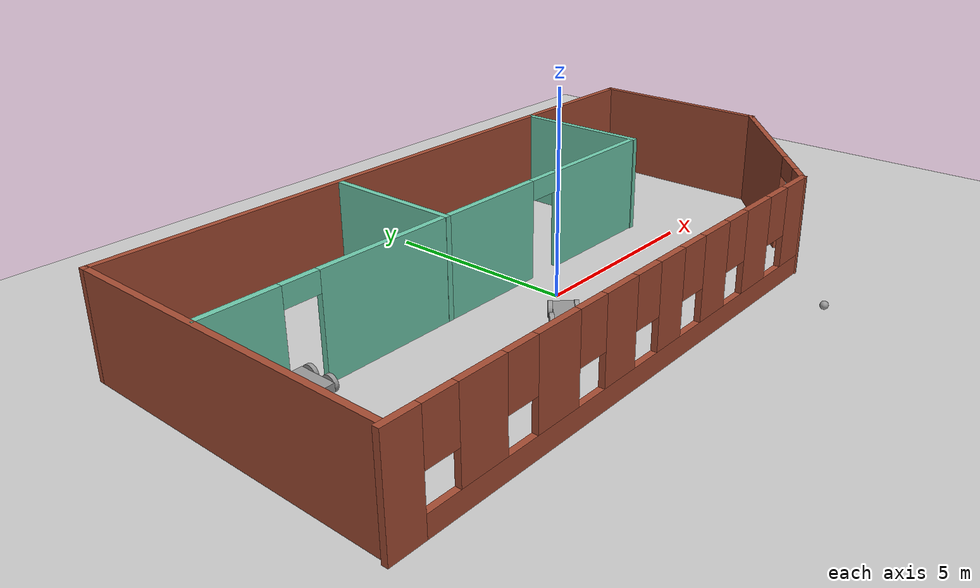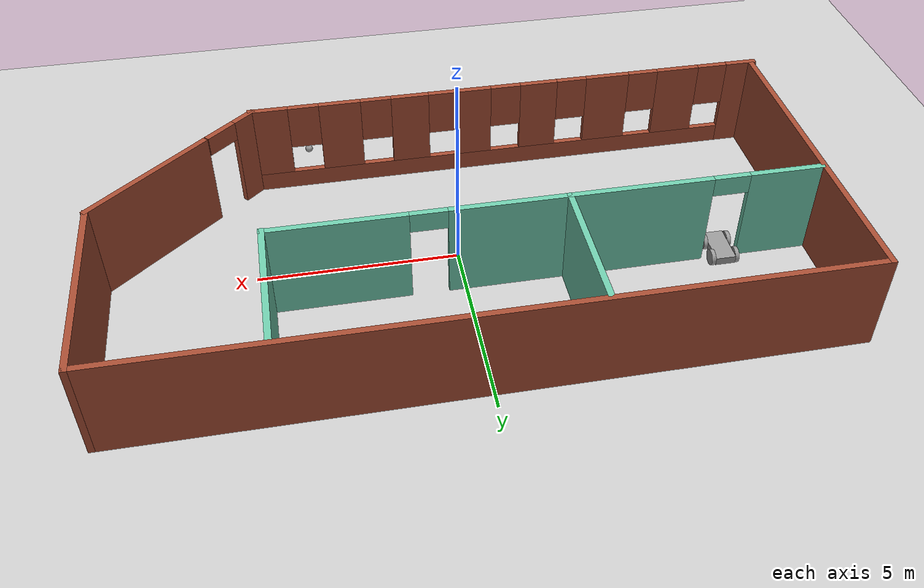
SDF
<sdf version="1.6">
 <world name="default">
  <plugin name="projectPlugin" filename="libprojectPlugin.so"/>
  <light name="sun" type="directional">
   <pose>0 0 10 0 -0 0</pose>
   <diffuse>0.8 0.8 0.8 1</diffuse>
   <specular>0.2 0.2 0.2 1</specular>
   <attenuation>
    <range>1000</range>
    <constant>0.9</constant>
    <linear>0.01</linear>
    <quadratic>0.001</quadratic>
   </attenuation>
   <direction>-0.5 0.1 -0.9</direction>
  </light>
  <model name="ground_plane">
   <static>1</static>
   <link name="link">
    <collision name="collision">
     <geometry><plane><normal>0 0 1</normal><size>100 100</size></plane></geometry>
     <surface><friction><ode><mu>100</mu><mu2>50</mu2></ode></friction></surface>
    </collision>
    <visual name="visual">
     <cast_shadows>0</cast_shadows>
     <geometry><plane><normal>0 0 1</normal><size>100 100</size></plane></geometry>
     <material>
      <script><uri>file://media/materials/scripts/gazebo.material</uri><name>Gazebo/Grey</name></script>
     </material>
    </visual>
   </link>
  </model>
  <gravity>0 0 -9.8</gravity>
  <magnetic_field>6e-06 2.3e-05 -4.2e-05</magnetic_field>
  <atmosphere type="adiabatic"/>
  <physics name="default_physics" default="0" type="ode">
   <max_step_size>0.001</max_step_size>
   <real_time_factor>1</real_time_factor>
   <real_time_update_rate>1000</real_time_update_rate>
  </physics>
  <scene><ambient>0.4 0.4 0.4 1</ambient><background>0.7 0.7 0.7 1</background><shadows>1</shadows></scene>
  <spherical_coordinates>
   <surface_model>EARTH_WGS84</surface_model>
   <latitude_deg>0</latitude_deg>
   <longitude_deg>0</longitude_deg>
   <elevation>0</elevation>
   <heading_deg>0</heading_deg>
  </spherical_coordinates>
  <model name="BasicBuilding">
   <pose>-0.10612 0.4507 0 0 -0 0</pose>
   <link name="Wall_0">
    <pose>-1.92677 -4.10118 0 0 -0 0</pose>
    <visual name="Wall_0_Visual_0">
     <pose>-6.4517 0 1.25 0 -0 0</pose>
     <geometry><box><size>0.846605 0.15 2.5</size></box></geometry>
     <material>
      <script><uri>file://media/materials/scripts/gazebo.material</uri><name>Gazebo/Bricks</name></script>
      <ambient>0.760784 0.662745 0.627451 1</ambient>
     </material>
     <meta><layer>0</layer></meta>
    </visual>
    <collision name="Wall_0_Collision_0">
     <geometry><box><size>0.846605 0.15 2.5</size></box></geometry>
     <pose>-6.4517 0 1.25 0 -0 0</pose>
    </collision>
    <visual name="Wall_0_Visual_1">
     <pose>0.423302 0 0.25 0 -0 0</pose>
     <geometry><box><size>12.9034 0.15 0.5</size></box></geometry>
     <material>
      <script><uri>file://media/materials/scripts/gazebo.material</uri><name>Gazebo/Bricks</name></script>
      <ambient>0.760784 0.662745 0.627451 1</ambient>
     </material>
     <meta><layer>0</layer></meta>
    </visual>
    <collision name="Wall_0_Collision_1">
     <geometry><box><size>12.9034 0.15 0.5</size></box></geometry>
     <pose>0.423302 0 0.25 0 -0 0</pose>
    </collision>
    <visual name="Wall_0_Visual_2">
     <pose>-4.6505 0 1.5 0 -0 0</pose>
     <geometry><box><size>1.15579 0.15 2</size></box></geometry>
     <material>
      <script><uri>file://media/materials/scripts/gazebo.material</uri><name>Gazebo/Bricks</name></script>
      <ambient>0.760784 0.662745 0.627451 1</ambient>
     </material>
     <meta><layer>0</layer></meta>
    </visual>
    <collision name="Wall_0_Collision_2">
     <geometry><box><size>1.15579 0.15 2</size></box></geometry>
     <pose>-4.6505 0 1.5 0 -0 0</pose>
    </collision>
    <visual name="Wall_0_Visual_3">
     <pose>-2.68292 0 1.5 0 -0 0</pose>
     <geometry><box><size>1.17936 0.15 2</size></box></geometry>
     <material>
      <script><uri>file://media/materials/scripts/gazebo.material</uri><name>Gazebo/Bricks</name></script>
      <ambient>0.760784 0.662745 0.627451 1</ambient>
     </material>
     <meta><layer>0</layer></meta>
    </visual>
    <collision name="Wall_0_Collision_3">
     <geometry><box><size>1.17936 0.15 2</size></box></geometry>
     <pose>-2.68292 0 1.5 0 -0 0</pose>
    </collision>
    <visual name="Wall_0_Visual_4">
     <pose>-0.79322 0 1.5 0 -0 0</pose>
     <geometry><box><size>1.00005 0.15 2</size></box></geometry>
     <material>
      <script><uri>file://media/materials/scripts/gazebo.material</uri><name>Gazebo/Bricks</name></script>
      <ambient>0.760784 0.662745 0.627451 1</ambient>
     </material>
     <meta><layer>0</layer></meta>
    </visual>
    <collision name="Wall_0_Collision_4">
     <geometry><box><size>1.00005 0.15 2</size></box></geometry>
     <pose>-0.79322 0 1.5 0 -0 0</pose>
    </collision>
    <visual name="Wall_0_Visual_5">
     <pose>0.943319 0 1.5 0 -0 0</pose>
     <geometry><box><size>0.873027 0.15 2</size></box></geometry>
     <material>
      <script><uri>file://media/materials/scripts/gazebo.material</uri><name>Gazebo/Bricks</name></script>
      <ambient>0.760784 0.662745 0.627451 1</ambient>
     </material>
     <meta><layer>0</layer></meta>
    </visual>
    <collision name="Wall_0_Collision_5">
     <geometry><box><size>0.873027 0.15 2</size></box></geometry>
     <pose>0.943319 0 1.5 0 -0 0</pose>
    </collision>
    <visual name="Wall_0_Visual_6">
     <pose>2.67526 0 1.5 0 -0 0</pose>
     <geometry><box><size>0.990846 0.15 2</size></box></geometry>
     <material>
      <script><uri>file://media/materials/scripts/gazebo.material</uri><name>Gazebo/Bricks</name></script>
      <ambient>0.760784 0.662745 0.627451 1</ambient>
     </material>
     <meta><layer>0</layer></meta>
    </visual>
    <collision name="Wall_0_Collision_6">
     <geometry><box><size>0.990846 0.15 2</size></box></geometry>
     <pose>2.67526 0 1.5 0 -0 0</pose>
    </collision>
    <visual name="Wall_0_Visual_7">
     <pose>4.51323 0 1.5 0 -0 0</pose>
     <geometry><box><size>1.0851 0.15 2</size></box></geometry>
     <material>
      <script><uri>file://media/materials/scripts/gazebo.material</uri><name>Gazebo/Bricks</name></script>
      <ambient>0.760784 0.662745 0.627451 1</ambient>
     </material>
     <meta><layer>0</layer></meta>
    </visual>
    <collision name="Wall_0_Collision_7">
     <geometry><box><size>1.0851 0.15 2</size></box></geometry>
     <pose>4.51323 0 1.5 0 -0 0</pose>
    </collision>
    <visual name="Wall_0_Visual_8">
     <pose>6.36539 0 1.5 0 -0 0</pose>
     <geometry><box><size>1.01922 0.15 2</size></box></geometry>
     <material>
      <script><uri>file://media/materials/scripts/gazebo.material</uri><name>Gazebo/Bricks</name></script>
      <ambient>0.760784 0.662745 0.627451 1</ambient>
     </material>
     <meta><layer>0</layer></meta>
    </visual>
    <collision name="Wall_0_Collision_8">
     <geometry><box><size>1.01922 0.15 2</size></box></geometry>
     <pose>6.36539 0 1.5 0 -0 0</pose>
    </collision>
    <visual name="Wall_0_Visual_9">
     <pose>-5.6284 0 1.9 0 -0 0</pose>
     <geometry><box><size>0.8 0.15 1.2</size></box></geometry>
     <material>
      <script><uri>file://media/materials/scripts/gazebo.material</uri><name>Gazebo/Bricks</name></script>
      <ambient>0.760784 0.662745 0.627451 1</ambient>
     </material>
     <meta><layer>0</layer></meta>
    </visual>
    <collision name="Wall_0_Collision_9">
     <geometry><box><size>0.8 0.15 1.2</size></box></geometry>
     <pose>-5.6284 0 1.9 0 -0 0</pose>
    </collision>
    <visual name="Wall_0_Visual_10">
     <pose>-3.6726 0 1.9 0 -0 0</pose>
     <geometry><box><size>0.8 0.15 1.2</size></box></geometry>
     <material>
      <script><uri>file://media/materials/scripts/gazebo.material</uri><name>Gazebo/Bricks</name></script>
      <ambient>0.760784 0.662745 0.627451 1</ambient>
     </material>
     <meta><layer>0</layer></meta>
    </visual>
    <collision name="Wall_0_Collision_10">
     <geometry><box><size>0.8 0.15 1.2</size></box></geometry>
     <pose>-3.6726 0 1.9 0 -0 0</pose>
    </collision>
    <visual name="Wall_0_Visual_11">
     <pose>-1.69325 0 1.9 0 -0 0</pose>
     <geometry><box><size>0.8 0.15 1.2</size></box></geometry>
     <material>
      <script><uri>file://media/materials/scripts/gazebo.material</uri><name>Gazebo/Bricks</name></script>
      <ambient>0.760784 0.662745 0.627451 1</ambient>
     </material>
     <meta><layer>0</layer></meta>
    </visual>
    <collision name="Wall_0_Collision_11">
     <geometry><box><size>0.8 0.15 1.2</size></box></geometry>
     <pose>-1.69325 0 1.9 0 -0 0</pose>
    </collision>
    <visual name="Wall_0_Visual_12">
     <pose>0.106805 0 1.9 0 -0 0</pose>
     <geometry><box><size>0.8 0.15 1.2</size></box></geometry>
     <material>
      <script><uri>file://media/materials/scripts/gazebo.material</uri><name>Gazebo/Bricks</name></script>
      <ambient>0.760784 0.662745 0.627451 1</ambient>
     </material>
     <meta><layer>0</layer></meta>
    </visual>
    <collision name="Wall_0_Collision_12">
     <geometry><box><size>0.8 0.15 1.2</size></box></geometry>
     <pose>0.106805 0 1.9 0 -0 0</pose>
    </collision>
    <visual name="Wall_0_Visual_13">
     <pose>1.77983 0 1.9 0 -0 0</pose>
     <geometry><box><size>0.8 0.15 1.2</size></box></geometry>
     <material>
      <script><uri>file://media/materials/scripts/gazebo.material</uri><name>Gazebo/Bricks</name></script>
      <ambient>0.760784 0.662745 0.627451 1</ambient>
     </material>
     <meta><layer>0</layer></meta>
    </visual>
    <collision name="Wall_0_Collision_13">
     <geometry><box><size>0.8 0.15 1.2</size></box></geometry>
     <pose>1.77983 0 1.9 0 -0 0</pose>
    </collision>
    <visual name="Wall_0_Visual_14">
     <pose>3.57068 0 1.9 0 -0 0</pose>
     <geometry><box><size>0.8 0.15 1.2</size></box></geometry>
     <material>
      <script><uri>file://media/materials/scripts/gazebo.material</uri><name>Gazebo/Bricks</name></script>
      <ambient>0.760784 0.662745 0.627451 1</ambient>
     </material>
     <meta><layer>0</layer></meta>
    </visual>
    <collision name="Wall_0_Collision_14">
     <geometry><box><size>0.8 0.15 1.2</size></box></geometry>
     <pose>3.57068 0 1.9 0 -0 0</pose>
    </collision>
    <visual name="Wall_0_Visual_15">
     <pose>5.45578 0 1.9 0 -0 0</pose>
     <geometry><box><size>0.8 0.15 1.2</size></box></geometry>
     <material>
      <script><uri>file://media/materials/scripts/gazebo.material</uri><name>Gazebo/Bricks</name></script>
      <ambient>0.760784 0.662745 0.627451 1</ambient>
     </material>
     <meta><layer>0</layer></meta>
    </visual>
    <collision name="Wall_0_Collision_15">
     <geometry><box><size>0.8 0.15 1.2</size></box></geometry>
     <pose>5.45578 0 1.9 0 -0 0</pose>
    </collision>
   </link>
   <link name="Wall_1">
    <pose>6.77301 -2.40958 0 0 -0 0.721492</pose>
    <visual name="Wall_1_Visual_0">
     <pose>-2.29311 0 1.25 0 -0 0</pose>
     <geometry><box><size>0.685929 0.15 2.5</size></box></geometry>
     <material>
      <script><uri>file://media/materials/scripts/gazebo.material</uri><name>Gazebo/Bricks</name></script>
      <ambient>0.760784 0.662745 0.627451 1</ambient>
     </material>
     <meta><layer>0</layer></meta>
    </visual>
    <collision name="Wall_1_Collision_0">
     <geometry><box><size>0.685929 0.15 2.5</size></box></geometry>
     <pose>-2.29311 0 1.25 0 -0 0</pose>
    </collision>
    <visual name="Wall_1_Visual_1">
     <pose>0.792965 0 1.25 0 -0 0</pose>
     <geometry><box><size>3.68622 0.15 2.5</size></box></geometry>
     <material>
      <script><uri>file://media/materials/scripts/gazebo.material</uri><name>Gazebo/Bricks</name></script>
      <ambient>0.760784 0.662745 0.627451 1</ambient>
     </material>
     <meta><layer>0</layer></meta>
    </visual>
    <collision name="Wall_1_Collision_1">
     <geometry><box><size>3.68622 0.15 2.5</size></box></geometry>
     <pose>0.792965 0 1.25 0 -0 0</pose>
    </collision>
    <visual name="Wall_1_Visual_2">
     <pose>1.2323 0 1.25 0 -0 0</pose>
     <geometry><box><size>2.80755 0.15 2.5</size></box></geometry>
     <material>
      <script><uri>file://media/materials/scripts/gazebo.material</uri><name>Gazebo/Bricks</name></script>
      <ambient>0.760784 0.662745 0.627451 1</ambient>
     </material>
     <meta><layer>0</layer></meta>
    </visual>
    <collision name="Wall_1_Collision_2">
     <geometry><box><size>2.80755 0.15 2.5</size></box></geometry>
     <pose>1.2323 0 1.25 0 -0 0</pose>
    </collision>
    <visual name="Wall_1_Visual_3">
     <pose>-1.51081 0 2.25 0 -0 0</pose>
     <geometry><box><size>0.878667 0.15 0.5</size></box></geometry>
     <material>
      <script><uri>file://media/materials/scripts/gazebo.material</uri><name>Gazebo/Bricks</name></script>
      <ambient>0.760784 0.662745 0.627451 1</ambient>
     </material>
     <meta><layer>0</layer></meta>
    </visual>
    <collision name="Wall_1_Collision_3">
     <geometry><box><size>0.878667 0.15 0.5</size></box></geometry>
     <pose>-1.51081 0 2.25 0 -0 0</pose>
    </collision>
   </link>
   <link name="Wall_15">
    <collision name="Wall_15_Collision">
     <geometry><box><size>17.5 0.15 2.5</size></box></geometry>
     <pose>0 0 1.25 0 -0 0</pose>
    </collision>
    <visual name="Wall_15_Visual">
     <pose>0 0 1.25 0 -0 0</pose>
     <geometry><box><size>17.5 0.15 2.5</size></box></geometry>
     <material>
      <script><uri>file://media/materials/scripts/gazebo.material</uri><name>Gazebo/Bricks</name></script>
      <ambient>1 1 1 1</ambient>
     </material>
     <meta><layer>0</layer></meta>
    </visual>
    <pose>0.020919 4.13203 0 0 -0 3.14159</pose>
   </link>
   <link name="Wall_16">
    <collision name="Wall_16_Collision">
     <geometry><box><size>8.25 0.15 2.5</size></box></geometry>
     <pose>0 0 1.25 0 -0 0</pose>
    </collision>
    <visual name="Wall_16_Visual">
     <pose>0 0 1.25 0 -0 0</pose>
     <geometry><box><size>8.25 0.15 2.5</size></box></geometry>
     <material>
      <script><uri>file://media/materials/scripts/gazebo.material</uri><name>Gazebo/Bricks</name></script>
      <ambient>1 1 1 1</ambient>
     </material>
     <meta><layer>0</layer></meta>
    </visual>
    <pose>-8.65408 0.082028 0 0 0 -1.5708</pose>
   </link>
   <link name="Wall_2">
    <collision name="Wall_2_Collision">
     <geometry><box><size>5 0.15 2.5</size></box></geometry>
     <pose>0 0 1.25 0 -0 0</pose>
    </collision>
    <visual name="Wall_2_Visual">
     <pose>0 0 1.25 0 -0 0</pose>
     <geometry><box><size>5 0.15 2.5</size></box></geometry>
     <material>
      <script><uri>file://media/materials/scripts/gazebo.material</uri><name>Gazebo/Bricks</name></script>
      <ambient>1 1 1 1</ambient>
     </material>
     <meta><layer>0</layer></meta>
    </visual>
    <pose>8.69592 1.70703 0 0 -0 1.5708</pose>
   </link>
   <link name="Wall_20">
    <pose>-1.90249 0.680575 0 0 -0 0</pose>
    <visual name="Wall_20_Visual_0">
     <pose>-5.80734 0 1.25 0 -0 0</pose>
     <geometry><box><size>1.88545 0.15 2.5</size></box></geometry>
     <material>
      <script><uri>file://media/materials/scripts/gazebo.material</uri><name>Gazebo/Grey</name></script>
      <ambient>0.435294 0.796078 0.67451 1</ambient>
     </material>
     <meta><layer>0</layer></meta>
    </visual>
    <collision name="Wall_20_Collision_0">
     <geometry><box><size>1.88545 0.15 2.5</size></box></geometry>
     <pose>-5.80734 0 1.25 0 -0 0</pose>
    </collision>
    <visual name="Wall_20_Visual_1">
     <pose>-0.764002 0 1.25 0 -0 0</pose>
     <geometry><box><size>6.40123 0.15 2.5</size></box></geometry>
     <material>
      <script><uri>file://media/materials/scripts/gazebo.material</uri><name>Gazebo/Grey</name></script>
      <ambient>0.435294 0.796078 0.67451 1</ambient>
     </material>
     <meta><layer>0</layer></meta>
    </visual>
    <collision name="Wall_20_Collision_1">
     <geometry><box><size>6.40123 0.15 2.5</size></box></geometry>
     <pose>-0.764002 0 1.25 0 -0 0</pose>
    </collision>
    <visual name="Wall_20_Visual_2">
     <pose>5.04334 0 1.25 0 -0 0</pose>
     <geometry><box><size>3.41346 0.15 2.5</size></box></geometry>
     <material>
      <script><uri>file://media/materials/scripts/gazebo.material</uri><name>Gazebo/Grey</name></script>
      <ambient>0.435294 0.796078 0.67451 1</ambient>
     </material>
     <meta><layer>0</layer></meta>
    </visual>
    <collision name="Wall_20_Collision_2">
     <geometry><box><size>3.41346 0.15 2.5</size></box></geometry>
     <pose>5.04334 0 1.25 0 -0 0</pose>
    </collision>
    <visual name="Wall_20_Visual_3">
     <pose>-4.41462 0 2.25 0 -0 0</pose>
     <geometry><box><size>0.9 0.15 0.5</size></box></geometry>
     <material>
      <script><uri>file://media/materials/scripts/gazebo.material</uri><name>Gazebo/Grey</name></script>
      <ambient>0.435294 0.796078 0.67451 1</ambient>
     </material>
     <meta><layer>0</layer></meta>
    </visual>
    <collision name="Wall_20_Collision_3">
     <geometry><box><size>0.9 0.15 0.5</size></box></geometry>
     <pose>-4.41462 0 2.25 0 -0 0</pose>
    </collision>
    <visual name="Wall_20_Visual_4">
     <pose>2.88661 0 2.25 0 -0 0</pose>
     <geometry><box><size>0.9 0.15 0.5</size></box></geometry>
     <material>
      <script><uri>file://media/materials/scripts/gazebo.material</uri><name>Gazebo/Grey</name></script>
      <ambient>0.435294 0.796078 0.67451 1</ambient>
     </material>
     <meta><layer>0</layer></meta>
    </visual>
    <collision name="Wall_20_Collision_4">
     <geometry><box><size>0.9 0.15 0.5</size></box></geometry>
     <pose>2.88661 0 2.25 0 -0 0</pose>
    </collision>
   </link>
   <link name="Wall_21">
    <collision name="Wall_21_Collision">
     <geometry><box><size>3.60063 0.15 2.5</size></box></geometry>
     <pose>0 0 1.25 0 -0 0</pose>
    </collision>
    <visual name="Wall_21_Visual">
     <pose>0 0 1.25 0 -0 0</pose>
     <geometry><box><size>3.60063 0.15 2.5</size></box></geometry>
     <material>
      <script><uri>file://media/materials/scripts/gazebo.material</uri><name>Gazebo/Grey</name></script>
      <ambient>0.435294 0.796078 0.67451 1</ambient>
     </material>
     <meta><layer>0</layer></meta>
    </visual>
    <pose>4.76245 2.38575 0 0 -0 1.57662</pose>
   </link>
   <link name="Wall_23">
    <collision name="Wall_23_Collision">
     <geometry><box><size>3.5 0.15 2.5</size></box></geometry>
     <pose>0 0 1.25 0 -0 0</pose>
    </collision>
    <visual name="Wall_23_Visual">
     <pose>0 0 1.25 0 -0 0</pose>
     <geometry><box><size>3.5 0.15 2.5</size></box></geometry>
     <material>
      <script><uri>file://media/materials/scripts/gazebo.material</uri><name>Gazebo/Grey</name></script>
      <ambient>0.435294 0.796078 0.67451 1</ambient>
     </material>
     <meta><layer>0</layer></meta>
    </visual>
    <pose>-2.35473 2.3521 0 0 -0 1.5708</pose>
   </link>
   <static>1</static>
  </model>
  <model name="Simple4Wheel">
   <link name="link_0">
    <pose>-0 -0 0.004 0 -0 0</pose>
    <inertial>
     <mass>1</mass>
     <inertia>
      <ixx>0.166667</ixx>
      <ixy>0</ixy>
      <ixz>0</ixz>
      <iyy>0.166667</iyy>
      <iyz>0</iyz>
      <izz>0.166667</izz>
     </inertia>
    </inertial>
    <visual name="visual">
     <geometry><box><size>0.5 1 0.2</size></box></geometry>
     <material>
      <lighting>1</lighting>
      <script><uri>file://media/materials/scripts/gazebo.material</uri><name>Gazebo/Grey</name></script>
      <shader type="pixel"><normal_map>__default__</normal_map></shader>
      <ambient>0.3 0.3 0.3 1</ambient>
      <diffuse>0.7 0.7 0.7 1</diffuse>
      <specular>0.01 0.01 0.01 1</specular>
      <emissive>0 0 0 1</emissive>
     </material>
    </visual>
    <collision name="collision">
     <geometry><box><size>0.5 1 0.2</size></box></geometry>
     <surface>
      <friction>
       <ode><mu>1</mu><mu2>1</mu2><fdir1>0 0 0</fdir1><slip1>0</slip1><slip2>0</slip2></ode>
       <torsional>
        <coefficient>1</coefficient>
        <patch_radius>0</patch_radius>
        <surface_radius>0</surface_radius>
        <use_patch_radius>1</use_patch_radius>
        <ode><slip>0</slip></ode>
       </torsional>
      </friction>
      <bounce><restitution_coefficient>0</restitution_coefficient><threshold>1e+06</threshold></bounce>
      <contact>
       <collide_without_contact>0</collide_without_contact>
       <collide_without_contact_bitmask>1</collide_without_contact_bitmask>
       <collide_bitmask>1</collide_bitmask>
       <ode>
        <soft_cfm>0</soft_cfm>
        <soft_erp>0.2</soft_erp>
        <kp>1e+13</kp>
        <kd>1</kd>
        <max_vel>0.01</max_vel>
        <min_depth>0</min_depth>
       </ode>
       <bullet>
        <split_impulse>1</split_impulse>
        <split_impulse_penetration_threshold>-0.01</split_impulse_penetration_threshold>
        <soft_cfm>0</soft_cfm>
        <soft_erp>0.2</soft_erp>
        <kp>1e+13</kp>
        <kd>1</kd>
       </bullet>
      </contact>
     </surface>
    </collision>
   </link>
   <link name="link_1_clone">
    <pose>0.300019 -0.3 -0.001 0 -0 0</pose>
    <inertial>
     <mass>1</mass>
     <inertia><ixx>0.145833</ixx><ixy>0</ixy><ixz>0</ixz><iyy>0.145833</iyy><iyz>0</iyz><izz>0.125</izz></inertia>
    </inertial>
    <visual name="visual">
     <pose>0 0 0 0 1.5707 0</pose>
     <geometry><cylinder><radius>0.2</radius><length>0.1</length></cylinder></geometry>
     <material>
      <lighting>1</lighting>
      <script><uri>file://media/materials/scripts/gazebo.material</uri><name>Gazebo/Grey</name></script>
      <shader type="pixel"><normal_map>__default__</normal_map></shader>
      <ambient>0.3 0.3 0.3 1</ambient>
      <diffuse>0.7 0.7 0.7 1</diffuse>
      <specular>0.01 0.01 0.01 1</specular>
      <emissive>0 0 0 1</emissive>
     </material>
    </visual>
    <collision name="collision">
     <pose>0 0 0 0 1.5707 0</pose>
     <geometry><cylinder><radius>0.2</radius><length>0.1</length></cylinder></geometry>
     <surface>
      <friction>
       <ode><mu>1</mu><mu2>1</mu2><fdir1>0 0 0</fdir1><slip1>0</slip1><slip2>0</slip2></ode>
       <torsional>
        <coefficient>1</coefficient>
        <patch_radius>0</patch_radius>
        <surface_radius>0</surface_radius>
        <use_patch_radius>1</use_patch_radius>
        <ode><slip>0</slip></ode>
       </torsional>
      </friction>
      <bounce><restitution_coefficient>0</restitution_coefficient><threshold>1e+06</threshold></bounce>
      <contact>
       <collide_without_contact>0</collide_without_contact>
       <collide_without_contact_bitmask>1</collide_without_contact_bitmask>
       <collide_bitmask>1</collide_bitmask>
       <ode>
        <soft_cfm>0</soft_cfm>
        <soft_erp>0.2</soft_erp>
        <kp>1e+13</kp>
        <kd>1</kd>
        <max_vel>0.01</max_vel>
        <min_depth>0</min_depth>
       </ode>
       <bullet>
        <split_impulse>1</split_impulse>
        <split_impulse_penetration_threshold>-0.01</split_impulse_penetration_threshold>
        <soft_cfm>0</soft_cfm>
        <soft_erp>0.2</soft_erp>
        <kp>1e+13</kp>
        <kd>1</kd>
       </bullet>
      </contact>
     </surface>
    </collision>
   </link>
   <link name="link_1_clone_0">
    <pose>-0.30002 0.3 -0.001 0 -0 0</pose>
    <inertial>
     <mass>1</mass>
     <inertia><ixx>0.145833</ixx><ixy>0</ixy><ixz>0</ixz><iyy>0.145833</iyy><iyz>0</iyz><izz>0.125</izz></inertia>
    </inertial>
    <visual name="visual">
     <pose>0 0 0 0 1.5707 0</pose>
     <geometry><cylinder><radius>0.2</radius><length>0.1</length></cylinder></geometry>
     <material>
      <lighting>1</lighting>
      <script><uri>file://media/materials/scripts/gazebo.material</uri><name>Gazebo/Grey</name></script>
      <shader type="pixel"><normal_map>__default__</normal_map></shader>
      <ambient>0.3 0.3 0.3 1</ambient>
      <diffuse>0.7 0.7 0.7 1</diffuse>
      <specular>0.01 0.01 0.01 1</specular>
      <emissive>0 0 0 1</emissive>
     </material>
    </visual>
    <collision name="collision">
     <pose>0 0 0 0 1.5707 0</pose>
     <geometry><cylinder><radius>0.2</radius><length>0.1</length></cylinder></geometry>
     <surface>
      <friction>
       <ode><mu>1</mu><mu2>1</mu2><fdir1>0 0 0</fdir1><slip1>0</slip1><slip2>0</slip2></ode>
       <torsional>
        <coefficient>1</coefficient>
        <patch_radius>0</patch_radius>
        <surface_radius>0</surface_radius>
        <use_patch_radius>1</use_patch_radius>
        <ode><slip>0</slip></ode>
       </torsional>
      </friction>
      <bounce><restitution_coefficient>0</restitution_coefficient><threshold>1e+06</threshold></bounce>
      <contact>
       <collide_without_contact>0</collide_without_contact>
       <collide_without_contact_bitmask>1</collide_without_contact_bitmask>
       <collide_bitmask>1</collide_bitmask>
       <ode>
        <soft_cfm>0</soft_cfm>
        <soft_erp>0.2</soft_erp>
        <kp>1e+13</kp>
        <kd>1</kd>
        <max_vel>0.01</max_vel>
        <min_depth>0</min_depth>
       </ode>
       <bullet>
        <split_impulse>1</split_impulse>
        <split_impulse_penetration_threshold>-0.01</split_impulse_penetration_threshold>
        <soft_cfm>0</soft_cfm>
        <soft_erp>0.2</soft_erp>
        <kp>1e+13</kp>
        <kd>1</kd>
       </bullet>
      </contact>
     </surface>
    </collision>
   </link>
   <link name="link_1_clone_0_clone">
    <pose>-0.300019 -0.3 -0.001 0 -0 0</pose>
    <inertial>
     <mass>1</mass>
     <inertia><ixx>0.145833</ixx><ixy>0</ixy><ixz>0</ixz><iyy>0.145833</iyy><iyz>0</iyz><izz>0.125</izz></inertia>
    </inertial>
    <visual name="visual">
     <pose>0 0 0 0 1.5707 0</pose>
     <geometry><cylinder><radius>0.2</radius><length>0.1</length></cylinder></geometry>
     <material>
      <lighting>1</lighting>
      <script><uri>file://media/materials/scripts/gazebo.material</uri><name>Gazebo/Grey</name></script>
      <shader type="pixel"><normal_map>__default__</normal_map></shader>
      <ambient>0.3 0.3 0.3 1</ambient>
      <diffuse>0.7 0.7 0.7 1</diffuse>
      <specular>0.01 0.01 0.01 1</specular>
      <emissive>0 0 0 1</emissive>
     </material>
    </visual>
    <collision name="collision">
     <pose>0 0 0 0 1.5707 0</pose>
     <geometry><cylinder><radius>0.2</radius><length>0.1</length></cylinder></geometry>
     <surface>
      <friction>
       <ode><mu>1</mu><mu2>1</mu2><fdir1>0 0 0</fdir1><slip1>0</slip1><slip2>0</slip2></ode>
       <torsional>
        <coefficient>1</coefficient>
        <patch_radius>0</patch_radius>
        <surface_radius>0</surface_radius>
        <use_patch_radius>1</use_patch_radius>
        <ode><slip>0</slip></ode>
       </torsional>
      </friction>
      <bounce><restitution_coefficient>0</restitution_coefficient><threshold>1e+06</threshold></bounce>
      <contact>
       <collide_without_contact>0</collide_without_contact>
       <collide_without_contact_bitmask>1</collide_without_contact_bitmask>
       <collide_bitmask>1</collide_bitmask>
       <ode>
        <soft_cfm>0</soft_cfm>
        <soft_erp>0.2</soft_erp>
        <kp>1e+13</kp>
        <kd>1</kd>
        <max_vel>0.01</max_vel>
        <min_depth>0</min_depth>
       </ode>
       <bullet>
        <split_impulse>1</split_impulse>
        <split_impulse_penetration_threshold>-0.01</split_impulse_penetration_threshold>
        <soft_cfm>0</soft_cfm>
        <soft_erp>0.2</soft_erp>
        <kp>1e+13</kp>
        <kd>1</kd>
       </bullet>
      </contact>
     </surface>
    </collision>
   </link>
   <link name="link_1_clone_1">
    <pose>0.300019 0.3 -0.001 0 -0 0</pose>
    <inertial>
     <mass>1</mass>
     <inertia><ixx>0.145833</ixx><ixy>0</ixy><ixz>0</ixz><iyy>0.145833</iyy><iyz>0</iyz><izz>0.125</izz></inertia>
    </inertial>
    <visual name="visual">
     <pose>0 0 0 0 1.5707 0</pose>
     <geometry><cylinder><radius>0.2</radius><length>0.1</length></cylinder></geometry>
     <material>
      <lighting>1</lighting>
      <script><uri>file://media/materials/scripts/gazebo.material</uri><name>Gazebo/Grey</name></script>
      <shader type="pixel"><normal_map>__default__</normal_map></shader>
      <ambient>0.3 0.3 0.3 1</ambient>
      <diffuse>0.7 0.7 0.7 1</diffuse>
      <specular>0.01 0.01 0.01 1</specular>
      <emissive>0 0 0 1</emissive>
     </material>
    </visual>
    <collision name="collision">
     <pose>0 0 0 0 1.5707 0</pose>
     <geometry><cylinder><radius>0.2</radius><length>0.1</length></cylinder></geometry>
     <surface>
      <friction>
       <ode><mu>1</mu><mu2>1</mu2><fdir1>0 0 0</fdir1><slip1>0</slip1><slip2>0</slip2></ode>
       <torsional>
        <coefficient>1</coefficient>
        <patch_radius>0</patch_radius>
        <surface_radius>0</surface_radius>
        <use_patch_radius>1</use_patch_radius>
        <ode><slip>0</slip></ode>
       </torsional>
      </friction>
      <bounce><restitution_coefficient>0</restitution_coefficient><threshold>1e+06</threshold></bounce>
      <contact>
       <collide_without_contact>0</collide_without_contact>
       <collide_without_contact_bitmask>1</collide_without_contact_bitmask>
       <collide_bitmask>1</collide_bitmask>
       <ode>
        <soft_cfm>0</soft_cfm>
        <soft_erp>0.2</soft_erp>
        <kp>1e+13</kp>
        <kd>1</kd>
        <max_vel>0.01</max_vel>
        <min_depth>0</min_depth>
       </ode>
       <bullet>
        <split_impulse>1</split_impulse>
        <split_impulse_penetration_threshold>-0.01</split_impulse_penetration_threshold>
        <soft_cfm>0</soft_cfm>
        <soft_erp>0.2</soft_erp>
        <kp>1e+13</kp>
        <kd>1</kd>
       </bullet>
      </contact>
     </surface>
    </collision>
   </link>
   <joint name="link_0_JOINT_0" type="revolute">
    <parent>link_0</parent>
    <child>link_1_clone_1</child>
    <axis>
     <xyz>1 0 0</xyz>
     <use_parent_model_frame>0</use_parent_model_frame>
     <limit>
      <lower>-1.79769e+308</lower>
      <upper>1.79769e+308</upper>
      <effort>-1</effort>
      <velocity>-1</velocity>
     </limit>
     <dynamics>
      <spring_reference>0</spring_reference>
      <spring_stiffness>0</spring_stiffness>
      <damping>0</damping>
     </dynamics>
    </axis>
    <physics>
     <ode><limit><cfm>0</cfm><erp>0.2</erp></limit><suspension><cfm>0</cfm><erp>0.2</erp></suspension></ode>
    </physics>
   </joint>
   <joint name="link_0_JOINT_1" type="revolute">
    <parent>link_0</parent>
    <child>link_1_clone</child>
    <axis>
     <xyz>1 0 0</xyz>
     <use_parent_model_frame>0</use_parent_model_frame>
     <limit>
      <lower>-1.79769e+308</lower>
      <upper>1.79769e+308</upper>
      <effort>-1</effort>
      <velocity>-1</velocity>
     </limit>
     <dynamics>
      <spring_reference>0</spring_reference>
      <spring_stiffness>0</spring_stiffness>
      <damping>0</damping>
     </dynamics>
    </axis>
    <physics>
     <ode><limit><cfm>0</cfm><erp>0.2</erp></limit><suspension><cfm>0</cfm><erp>0.2</erp></suspension></ode>
    </physics>
   </joint>
   <joint name="link_0_JOINT_2" type="revolute">
    <parent>link_0</parent>
    <child>link_1_clone_0</child>
    <axis>
     <xyz>1 0 0</xyz>
     <use_parent_model_frame>0</use_parent_model_frame>
     <limit>
      <lower>-1.79769e+308</lower>
      <upper>1.79769e+308</upper>
      <effort>-1</effort>
      <velocity>-1</velocity>
     </limit>
     <dynamics>
      <spring_reference>0</spring_reference>
      <spring_stiffness>0</spring_stiffness>
      <damping>0</damping>
     </dynamics>
    </axis>
    <physics>
     <ode><limit><cfm>0</cfm><erp>0.2</erp></limit><suspension><cfm>0</cfm><erp>0.2</erp></suspension></ode>
    </physics>
   </joint>
   <joint name="link_0_JOINT_4" type="revolute">
    <parent>link_0</parent>
    <child>link_1_clone_0_clone</child>
    <axis>
     <xyz>1 0 0</xyz>
     <use_parent_model_frame>0</use_parent_model_frame>
     <limit>
      <lower>-1.79769e+308</lower>
      <upper>1.79769e+308</upper>
      <effort>-1</effort>
      <velocity>-1</velocity>
     </limit>
     <dynamics>
      <spring_reference>0</spring_reference>
      <spring_stiffness>0</spring_stiffness>
      <damping>0</damping>
     </dynamics>
    </axis>
    <physics>
     <ode><limit><cfm>0</cfm><erp>0.2</erp></limit><suspension><cfm>0</cfm><erp>0.2</erp></suspension></ode>
    </physics>
   </joint>
   <static>0</static>
   <pose>-0.940778 -0.948781 0.201005 0 0 -0.844356</pose>
  </model>
  <model name="Simple4Wheel_clone">
   <link name="link_0">
    <pose>-0 -0 0.004 0 -0 0</pose>
    <inertial>
     <mass>1</mass>
     <inertia>
      <ixx>0.166667</ixx>
      <ixy>0</ixy>
      <ixz>0</ixz>
      <iyy>0.166667</iyy>
      <iyz>0</iyz>
      <izz>0.166667</izz>
     </inertia>
    </inertial>
    <visual name="visual">
     <geometry><box><size>0.5 1 0.2</size></box></geometry>
     <material>
      <lighting>1</lighting>
      <script><uri>file://media/materials/scripts/gazebo.material</uri><name>Gazebo/Grey</name></script>
      <shader type="pixel"><normal_map>__default__</normal_map></shader>
      <ambient>0.3 0.3 0.3 1</ambient>
      <diffuse>0.7 0.7 0.7 1</diffuse>
      <specular>0.01 0.01 0.01 1</specular>
      <emissive>0 0 0 1</emissive>
     </material>
    </visual>
    <collision name="collision">
     <geometry><box><size>0.5 1 0.2</size></box></geometry>
     <surface>
      <friction>
       <ode><mu>1</mu><mu2>1</mu2><fdir1>0 0 0</fdir1><slip1>0</slip1><slip2>0</slip2></ode>
       <torsional>
        <coefficient>1</coefficient>
        <patch_radius>0</patch_radius>
        <surface_radius>0</surface_radius>
        <use_patch_radius>1</use_patch_radius>
        <ode><slip>0</slip></ode>
       </torsional>
      </friction>
      <bounce><restitution_coefficient>0</restitution_coefficient><threshold>1e+06</threshold></bounce>
      <contact>
       <collide_without_contact>0</collide_without_contact>
       <collide_without_contact_bitmask>1</collide_without_contact_bitmask>
       <collide_bitmask>1</collide_bitmask>
       <ode>
        <soft_cfm>0</soft_cfm>
        <soft_erp>0.2</soft_erp>
        <kp>1e+13</kp>
        <kd>1</kd>
        <max_vel>0.01</max_vel>
        <min_depth>0</min_depth>
       </ode>
       <bullet>
        <split_impulse>1</split_impulse>
        <split_impulse_penetration_threshold>-0.01</split_impulse_penetration_threshold>
        <soft_cfm>0</soft_cfm>
        <soft_erp>0.2</soft_erp>
        <kp>1e+13</kp>
        <kd>1</kd>
       </bullet>
      </contact>
     </surface>
    </collision>
   </link>
   <link name="link_1_clone">
    <pose>0.300019 -0.3 -0.001 0 -0 0</pose>
    <inertial>
     <mass>1</mass>
     <inertia><ixx>0.145833</ixx><ixy>0</ixy><ixz>0</ixz><iyy>0.145833</iyy><iyz>0</iyz><izz>0.125</izz></inertia>
    </inertial>
    <visual name="visual">
     <pose>0 0 0 0 1.5707 0</pose>
     <geometry><cylinder><radius>0.2</radius><length>0.1</length></cylinder></geometry>
     <material>
      <lighting>1</lighting>
      <script><uri>file://media/materials/scripts/gazebo.material</uri><name>Gazebo/Grey</name></script>
      <shader type="pixel"><normal_map>__default__</normal_map></shader>
      <ambient>0.3 0.3 0.3 1</ambient>
      <diffuse>0.7 0.7 0.7 1</diffuse>
      <specular>0.01 0.01 0.01 1</specular>
      <emissive>0 0 0 1</emissive>
     </material>
    </visual>
    <collision name="collision">
     <pose>0 0 0 0 1.5707 0</pose>
     <geometry><cylinder><radius>0.2</radius><length>0.1</length></cylinder></geometry>
     <surface>
      <friction>
       <ode><mu>1</mu><mu2>1</mu2><fdir1>0 0 0</fdir1><slip1>0</slip1><slip2>0</slip2></ode>
       <torsional>
        <coefficient>1</coefficient>
        <patch_radius>0</patch_radius>
        <surface_radius>0</surface_radius>
        <use_patch_radius>1</use_patch_radius>
        <ode><slip>0</slip></ode>
       </torsional>
      </friction>
      <bounce><restitution_coefficient>0</restitution_coefficient><threshold>1e+06</threshold></bounce>
      <contact>
       <collide_without_contact>0</collide_without_contact>
       <collide_without_contact_bitmask>1</collide_without_contact_bitmask>
       <collide_bitmask>1</collide_bitmask>
       <ode>
        <soft_cfm>0</soft_cfm>
        <soft_erp>0.2</soft_erp>
        <kp>1e+13</kp>
        <kd>1</kd>
        <max_vel>0.01</max_vel>
        <min_depth>0</min_depth>
       </ode>
       <bullet>
        <split_impulse>1</split_impulse>
        <split_impulse_penetration_threshold>-0.01</split_impulse_penetration_threshold>
        <soft_cfm>0</soft_cfm>
        <soft_erp>0.2</soft_erp>
        <kp>1e+13</kp>
        <kd>1</kd>
       </bullet>
      </contact>
     </surface>
    </collision>
   </link>
   <link name="link_1_clone_0">
    <pose>-0.30002 0.3 -0.001 0 -0 0</pose>
    <inertial>
     <mass>1</mass>
     <inertia><ixx>0.145833</ixx><ixy>0</ixy><ixz>0</ixz><iyy>0.145833</iyy><iyz>0</iyz><izz>0.125</izz></inertia>
    </inertial>
    <visual name="visual">
     <pose>0 0 0 0 1.5707 0</pose>
     <geometry><cylinder><radius>0.2</radius><length>0.1</length></cylinder></geometry>
     <material>
      <lighting>1</lighting>
      <script><uri>file://media/materials/scripts/gazebo.material</uri><name>Gazebo/Grey</name></script>
      <shader type="pixel"><normal_map>__default__</normal_map></shader>
      <ambient>0.3 0.3 0.3 1</ambient>
      <diffuse>0.7 0.7 0.7 1</diffuse>
      <specular>0.01 0.01 0.01 1</specular>
      <emissive>0 0 0 1</emissive>
     </material>
    </visual>
    <collision name="collision">
     <pose>0 0 0 0 1.5707 0</pose>
     <geometry><cylinder><radius>0.2</radius><length>0.1</length></cylinder></geometry>
     <surface>
      <friction>
       <ode><mu>1</mu><mu2>1</mu2><fdir1>0 0 0</fdir1><slip1>0</slip1><slip2>0</slip2></ode>
       <torsional>
        <coefficient>1</coefficient>
        <patch_radius>0</patch_radius>
        <surface_radius>0</surface_radius>
        <use_patch_radius>1</use_patch_radius>
        <ode><slip>0</slip></ode>
       </torsional>
      </friction>
      <bounce><restitution_coefficient>0</restitution_coefficient><threshold>1e+06</threshold></bounce>
      <contact>
       <collide_without_contact>0</collide_without_contact>
       <collide_without_contact_bitmask>1</collide_without_contact_bitmask>
       <collide_bitmask>1</collide_bitmask>
       <ode>
        <soft_cfm>0</soft_cfm>
        <soft_erp>0.2</soft_erp>
        <kp>1e+13</kp>
        <kd>1</kd>
        <max_vel>0.01</max_vel>
        <min_depth>0</min_depth>
       </ode>
       <bullet>
        <split_impulse>1</split_impulse>
        <split_impulse_penetration_threshold>-0.01</split_impulse_penetration_threshold>
        <soft_cfm>0</soft_cfm>
        <soft_erp>0.2</soft_erp>
        <kp>1e+13</kp>
        <kd>1</kd>
       </bullet>
      </contact>
     </surface>
    </collision>
   </link>
   <link name="link_1_clone_0_clone">
    <pose>-0.300019 -0.3 -0.001 0 -0 0</pose>
    <inertial>
     <mass>1</mass>
     <inertia><ixx>0.145833</ixx><ixy>0</ixy><ixz>0</ixz><iyy>0.145833</iyy><iyz>0</iyz><izz>0.125</izz></inertia>
    </inertial>
    <visual name="visual">
     <pose>0 0 0 0 1.5707 0</pose>
     <geometry><cylinder><radius>0.2</radius><length>0.1</length></cylinder></geometry>
     <material>
      <lighting>1</lighting>
      <script><uri>file://media/materials/scripts/gazebo.material</uri><name>Gazebo/Grey</name></script>
      <shader type="pixel"><normal_map>__default__</normal_map></shader>
      <ambient>0.3 0.3 0.3 1</ambient>
      <diffuse>0.7 0.7 0.7 1</diffuse>
      <specular>0.01 0.01 0.01 1</specular>
      <emissive>0 0 0 1</emissive>
     </material>
    </visual>
    <collision name="collision">
     <pose>0 0 0 0 1.5707 0</pose>
     <geometry><cylinder><radius>0.2</radius><length>0.1</length></cylinder></geometry>
     <surface>
      <friction>
       <ode><mu>1</mu><mu2>1</mu2><fdir1>0 0 0</fdir1><slip1>0</slip1><slip2>0</slip2></ode>
       <torsional>
        <coefficient>1</coefficient>
        <patch_radius>0</patch_radius>
        <surface_radius>0</surface_radius>
        <use_patch_radius>1</use_patch_radius>
        <ode><slip>0</slip></ode>
       </torsional>
      </friction>
      <bounce><restitution_coefficient>0</restitution_coefficient><threshold>1e+06</threshold></bounce>
      <contact>
       <collide_without_contact>0</collide_without_contact>
       <collide_without_contact_bitmask>1</collide_without_contact_bitmask>
       <collide_bitmask>1</collide_bitmask>
       <ode>
        <soft_cfm>0</soft_cfm>
        <soft_erp>0.2</soft_erp>
        <kp>1e+13</kp>
        <kd>1</kd>
        <max_vel>0.01</max_vel>
        <min_depth>0</min_depth>
       </ode>
       <bullet>
        <split_impulse>1</split_impulse>
        <split_impulse_penetration_threshold>-0.01</split_impulse_penetration_threshold>
        <soft_cfm>0</soft_cfm>
        <soft_erp>0.2</soft_erp>
        <kp>1e+13</kp>
        <kd>1</kd>
       </bullet>
      </contact>
     </surface>
    </collision>
   </link>
   <link name="link_1_clone_1">
    <pose>0.300019 0.3 -0.001 0 -0 0</pose>
    <inertial>
     <mass>1</mass>
     <inertia><ixx>0.145833</ixx><ixy>0</ixy><ixz>0</ixz><iyy>0.145833</iyy><iyz>0</iyz><izz>0.125</izz></inertia>
    </inertial>
    <visual name="visual">
     <pose>0 0 0 0 1.5707 0</pose>
     <geometry><cylinder><radius>0.2</radius><length>0.1</length></cylinder></geometry>
     <material>
      <lighting>1</lighting>
      <script><uri>file://media/materials/scripts/gazebo.material</uri><name>Gazebo/Grey</name></script>
      <shader type="pixel"><normal_map>__default__</normal_map></shader>
      <ambient>0.3 0.3 0.3 1</ambient>
      <diffuse>0.7 0.7 0.7 1</diffuse>
      <specular>0.01 0.01 0.01 1</specular>
      <emissive>0 0 0 1</emissive>
     </material>
    </visual>
    <collision name="collision">
     <pose>0 0 0 0 1.5707 0</pose>
     <geometry><cylinder><radius>0.2</radius><length>0.1</length></cylinder></geometry>
     <surface>
      <friction>
       <ode><mu>1</mu><mu2>1</mu2><fdir1>0 0 0</fdir1><slip1>0</slip1><slip2>0</slip2></ode>
       <torsional>
        <coefficient>1</coefficient>
        <patch_radius>0</patch_radius>
        <surface_radius>0</surface_radius>
        <use_patch_radius>1</use_patch_radius>
        <ode><slip>0</slip></ode>
       </torsional>
      </friction>
      <bounce><restitution_coefficient>0</restitution_coefficient><threshold>1e+06</threshold></bounce>
      <contact>
       <collide_without_contact>0</collide_without_contact>
       <collide_without_contact_bitmask>1</collide_without_contact_bitmask>
       <collide_bitmask>1</collide_bitmask>
       <ode>
        <soft_cfm>0</soft_cfm>
        <soft_erp>0.2</soft_erp>
        <kp>1e+13</kp>
        <kd>1</kd>
        <max_vel>0.01</max_vel>
        <min_depth>0</min_depth>
       </ode>
       <bullet>
        <split_impulse>1</split_impulse>
        <split_impulse_penetration_threshold>-0.01</split_impulse_penetration_threshold>
        <soft_cfm>0</soft_cfm>
        <soft_erp>0.2</soft_erp>
        <kp>1e+13</kp>
        <kd>1</kd>
       </bullet>
      </contact>
     </surface>
    </collision>
   </link>
   <joint name="link_0_JOINT_0" type="revolute">
    <parent>link_0</parent>
    <child>link_1_clone_1</child>
    <axis>
     <xyz>1 0 0</xyz>
     <use_parent_model_frame>0</use_parent_model_frame>
     <limit>
      <lower>-1.79769e+308</lower>
      <upper>1.79769e+308</upper>
      <effort>-1</effort>
      <velocity>-1</velocity>
     </limit>
     <dynamics>
      <spring_reference>0</spring_reference>
      <spring_stiffness>0</spring_stiffness>
      <damping>0</damping>
     </dynamics>
    </axis>
    <physics>
     <ode><limit><cfm>0</cfm><erp>0.2</erp></limit><suspension><cfm>0</cfm><erp>0.2</erp></suspension></ode>
    </physics>
   </joint>
   <joint name="link_0_JOINT_1" type="revolute">
    <parent>link_0</parent>
    <child>link_1_clone</child>
    <axis>
     <xyz>1 0 0</xyz>
     <use_parent_model_frame>0</use_parent_model_frame>
     <limit>
      <lower>-1.79769e+308</lower>
      <upper>1.79769e+308</upper>
      <effort>-1</effort>
      <velocity>-1</velocity>
     </limit>
     <dynamics>
      <spring_reference>0</spring_reference>
      <spring_stiffness>0</spring_stiffness>
      <damping>0</damping>
     </dynamics>
    </axis>
    <physics>
     <ode><limit><cfm>0</cfm><erp>0.2</erp></limit><suspension><cfm>0</cfm><erp>0.2</erp></suspension></ode>
    </physics>
   </joint>
   <joint name="link_0_JOINT_2" type="revolute">
    <parent>link_0</parent>
    <child>link_1_clone_0</child>
    <axis>
     <xyz>1 0 0</xyz>
     <use_parent_model_frame>0</use_parent_model_frame>
     <limit>
      <lower>-1.79769e+308</lower>
      <upper>1.79769e+308</upper>
      <effort>-1</effort>
      <velocity>-1</velocity>
     </limit>
     <dynamics>
      <spring_reference>0</spring_reference>
      <spring_stiffness>0</spring_stiffness>
      <damping>0</damping>
     </dynamics>
    </axis>
    <physics>
     <ode><limit><cfm>0</cfm><erp>0.2</erp></limit><suspension><cfm>0</cfm><erp>0.2</erp></suspension></ode>
    </physics>
   </joint>
   <joint name="link_0_JOINT_4" type="revolute">
    <parent>link_0</parent>
    <child>link_1_clone_0_clone</child>
    <axis>
     <xyz>1 0 0</xyz>
     <use_parent_model_frame>0</use_parent_model_frame>
     <limit>
      <lower>-1.79769e+308</lower>
      <upper>1.79769e+308</upper>
      <effort>-1</effort>
      <velocity>-1</velocity>
     </limit>
     <dynamics>
      <spring_reference>0</spring_reference>
      <spring_stiffness>0</spring_stiffness>
      <damping>0</damping>
     </dynamics>
    </axis>
    <physics>
     <ode><limit><cfm>0</cfm><erp>0.2</erp></limit><suspension><cfm>0</cfm><erp>0.2</erp></suspension></ode>
    </physics>
   </joint>
   <static>0</static>
   <pose>-6.44969 1.11041 0.200999 -3e-06 -3e-06 -0.005806</pose>
  </model>
  <model name="bookshelf">
   <static>1</static>
   <link name="link">
    <inertial><mass>1</mass></inertial>
    <collision name="back">
     <pose>0 0.005 0.6 0 -0 0</pose>
     <geometry><box><size>0.9 0.01 1.2</size></box></geometry>
    </collision>
    <visual name="visual1">
     <pose>0 0.005 0.6 0 -0 0</pose>
     <geometry><box><size>0.9 0.01 1.2</size></box></geometry>
     <material>
      <script><uri>file://media/materials/scripts/gazebo.material</uri><name>Gazebo/Wood</name></script>
     </material>
    </visual>
    <collision name="left_side">
     <pose>0.45 -0.195 0.6 0 -0 0</pose>
     <geometry><box><size>0.02 0.4 1.2</size></box></geometry>
    </collision>
    <visual name="visual2">
     <pose>0.45 -0.195 0.6 0 -0 0</pose>
     <geometry><box><size>0.02 0.4 1.2</size></box></geometry>
     <material>
      <script><uri>file://media/materials/scripts/gazebo.material</uri><name>Gazebo/Wood</name></script>
     </material>
    </visual>
    <collision name="right_side">
     <pose>-0.45 -0.195 0.6 0 -0 0</pose>
     <geometry><box><size>0.02 0.4 1.2</size></box></geometry>
    </collision>
    <visual name="visual3">
     <pose>-0.45 -0.195 0.6 0 -0 0</pose>
     <geometry><box><size>0.02 0.4 1.2</size></box></geometry>
     <material>
      <script><uri>file://media/materials/scripts/gazebo.material</uri><name>Gazebo/Wood</name></script>
     </material>
    </visual>
    <collision name="bottom">
     <pose>0 -0.195 0.03 0 -0 0</pose>
     <geometry><box><size>0.88 0.4 0.06</size></box></geometry>
    </collision>
    <visual name="visual4">
     <pose>0 -0.195 0.03 0 -0 0</pose>
     <geometry><box><size>0.88 0.4 0.06</size></box></geometry>
     <material>
      <script><uri>file://media/materials/scripts/gazebo.material</uri><name>Gazebo/Wood</name></script>
     </material>
    </visual>
    <collision name="top">
     <pose>0 -0.195 1.19 0 -0 0</pose>
     <geometry><box><size>0.88 0.4 0.02</size></box></geometry>
    </collision>
    <visual name="visual5">
     <pose>0 -0.195 1.19 0 -0 0</pose>
     <geometry><box><size>0.88 0.4 0.02</size></box></geometry>
     <material>
      <script><uri>file://media/materials/scripts/gazebo.material</uri><name>Gazebo/Wood</name></script>
     </material>
    </visual>
    <collision name="low_shelf">
     <pose>0 -0.195 0.43 0 -0 0</pose>
     <geometry><box><size>0.88 0.4 0.02</size></box></geometry>
    </collision>
    <visual name="visual6">
     <pose>0 -0.195 0.43 0 -0 0</pose>
     <geometry><box><size>0.88 0.4 0.02</size></box></geometry>
     <material>
      <script><uri>file://media/materials/scripts/gazebo.material</uri><name>Gazebo/Wood</name></script>
     </material>
    </visual>
    <collision name="high_shelf">
     <pose>0 -0.195 0.8 0 -0 0</pose>
     <geometry><box><size>0.88 0.4 0.02</size></box></geometry>
    </collision>
    <visual name="visual7">
     <pose>0 -0.195 0.8 0 -0 0</pose>
     <geometry><box><size>0.88 0.4 0.02</size></box></geometry>
     <material>
      <script><uri>file://media/materials/scripts/gazebo.material</uri><name>Gazebo/Wood</name></script>
     </material>
    </visual>
   </link>
   <pose>5.19775 4.47347 0 0 -0 0</pose>
  </model>
  <model name="bookshelf_0">
   <static>1</static>
   <link name="link">
    <inertial><mass>1</mass></inertial>
    <collision name="back">
     <pose>0 0.005 0.6 0 -0 0</pose>
     <geometry><box><size>0.9 0.01 1.2</size></box></geometry>
    </collision>
    <visual name="visual1">
     <pose>0 0.005 0.6 0 -0 0</pose>
     <geometry><box><size>0.9 0.01 1.2</size></box></geometry>
     <material>
      <script><uri>file://media/materials/scripts/gazebo.material</uri><name>Gazebo/Wood</name></script>
     </material>
    </visual>
    <collision name="left_side">
     <pose>0.45 -0.195 0.6 0 -0 0</pose>
     <geometry><box><size>0.02 0.4 1.2</size></box></geometry>
    </collision>
    <visual name="visual2">
     <pose>0.45 -0.195 0.6 0 -0 0</pose>
     <geometry><box><size>0.02 0.4 1.2</size></box></geometry>
     <material>
      <script><uri>file://media/materials/scripts/gazebo.material</uri><name>Gazebo/Wood</name></script>
     </material>
    </visual>
    <collision name="right_side">
     <pose>-0.45 -0.195 0.6 0 -0 0</pose>
     <geometry><box><size>0.02 0.4 1.2</size></box></geometry>
    </collision>
    <visual name="visual3">
     <pose>-0.45 -0.195 0.6 0 -0 0</pose>
     <geometry><box><size>0.02 0.4 1.2</size></box></geometry>
     <material>
      <script><uri>file://media/materials/scripts/gazebo.material</uri><name>Gazebo/Wood</name></script>
     </material>
    </visual>
    <collision name="bottom">
     <pose>0 -0.195 0.03 0 -0 0</pose>
     <geometry><box><size>0.88 0.4 0.06</size></box></geometry>
    </collision>
    <visual name="visual4">
     <pose>0 -0.195 0.03 0 -0 0</pose>
     <geometry><box><size>0.88 0.4 0.06</size></box></geometry>
     <material>
      <script><uri>file://media/materials/scripts/gazebo.material</uri><name>Gazebo/Wood</name></script>
     </material>
    </visual>
    <collision name="top">
     <pose>0 -0.195 1.19 0 -0 0</pose>
     <geometry><box><size>0.88 0.4 0.02</size></box></geometry>
    </collision>
    <visual name="visual5">
     <pose>0 -0.195 1.19 0 -0 0</pose>
     <geometry><box><size>0.88 0.4 0.02</size></box></geometry>
     <material>
      <script><uri>file://media/materials/scripts/gazebo.material</uri><name>Gazebo/Wood</name></script>
     </material>
    </visual>
    <collision name="low_shelf">
     <pose>0 -0.195 0.43 0 -0 0</pose>
     <geometry><box><size>0.88 0.4 0.02</size></box></geometry>
    </collision>
    <visual name="visual6">
     <pose>0 -0.195 0.43 0 -0 0</pose>
     <geometry><box><size>0.88 0.4 0.02</size></box></geometry>
     <material>
      <script><uri>file://media/materials/scripts/gazebo.material</uri><name>Gazebo/Wood</name></script>
     </material>
    </visual>
    <collision name="high_shelf">
     <pose>0 -0.195 0.8 0 -0 0</pose>
     <geometry><box><size>0.88 0.4 0.02</size></box></geometry>
    </collision>
    <visual name="visual7">
     <pose>0 -0.195 0.8 0 -0 0</pose>
     <geometry><box><size>0.88 0.4 0.02</size></box></geometry>
     <material>
      <script><uri>file://media/materials/scripts/gazebo.material</uri><name>Gazebo/Wood</name></script>
     </material>
    </visual>
   </link>
   <pose>6.33269 4.45659 0 0 -0 0</pose>
  </model>
  <model name="my_ball">
   <link name="link_0">
    <inertial>
     <mass>1</mass>
     <inertia><ixx>0.1</ixx><ixy>0</ixy><ixz>0</ixz><iyy>0.1</iyy><iyz>0</iyz><izz>0.1</izz></inertia>
    </inertial>
    <visual name="visual">
     <geometry><sphere><radius>0.1</radius></sphere></geometry>
     <material>
      <lighting>1</lighting>
      <script><uri>file://media/materials/scripts/gazebo.material</uri><name>Gazebo/Grey</name></script>
      <shader type="pixel"><normal_map>__default__</normal_map></shader>
      <ambient>1 1 1 1</ambient>
      <diffuse>1 1 1 1</diffuse>
      <specular>1 1 1 1</specular>
      <emissive>1 1 1 1</emissive>
     </material>
    </visual>
    <collision name="collision">
     <geometry><sphere><radius>0.1</radius></sphere></geometry>
     <surface>
      <friction>
       <ode><mu>1</mu><mu2>1</mu2><fdir1>0 0 0</fdir1><slip1>0</slip1><slip2>0</slip2></ode>
       <torsional>
        <coefficient>1</coefficient>
        <patch_radius>0</patch_radius>
        <surface_radius>0</surface_radius>
        <use_patch_radius>1</use_patch_radius>
        <ode><slip>0</slip></ode>
       </torsional>
      </friction>
      <bounce><restitution_coefficient>0</restitution_coefficient><threshold>1e+06</threshold></bounce>
      <contact>
       <collide_without_contact>0</collide_without_contact>
       <collide_without_contact_bitmask>1</collide_without_contact_bitmask>
       <collide_bitmask>1</collide_bitmask>
       <ode>
        <soft_cfm>0</soft_cfm>
        <soft_erp>0.2</soft_erp>
        <kp>1e+13</kp>
        <kd>1</kd>
        <max_vel>0.01</max_vel>
        <min_depth>0</min_depth>
       </ode>
       <bullet>
        <split_impulse>1</split_impulse>
        <split_impulse_penetration_threshold>-0.01</split_impulse_penetration_threshold>
        <soft_cfm>0</soft_cfm>
        <soft_erp>0.2</soft_erp>
        <kp>1e+13</kp>
        <kd>1</kd>
       </bullet>
      </contact>
     </surface>
    </collision>
   </link>
   <static>0</static>
   <pose>3.38056 -5.10882 0.1 0 -0 0</pose>
  </model>
 </world>
</sdf>
